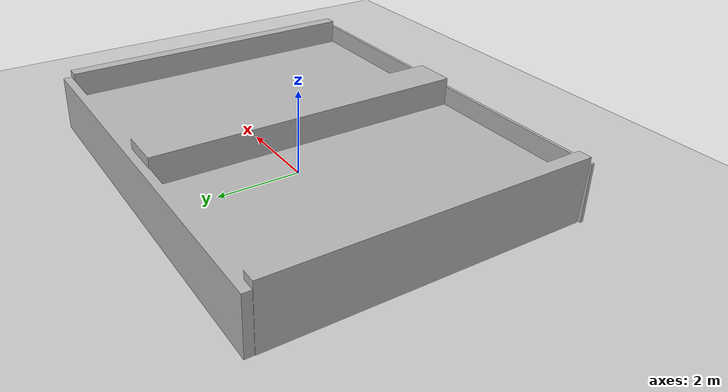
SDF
<sdf version="1.6">
 <world name="default">
  <model name="ground_plane">
   <static>1</static>
   <link name="link">
    <collision name="collision">
     <geometry><plane><normal>0 0 1</normal><size>100 100</size></plane></geometry>
     <surface><friction><ode><mu>100</mu><mu2>50</mu2></ode></friction></surface>
    </collision>
    <visual name="visual">
     <cast_shadows>0</cast_shadows>
     <geometry><plane><normal>0 0 1</normal><size>100 100</size></plane></geometry>
     <material>
      <script><uri>file://media/materials/scripts/gazebo.material</uri><name>Gazebo/Grey</name></script>
     </material>
    </visual>
   </link>
  </model>
  <light name="sun" type="directional">
   <pose>0 0 10 0 -0 0</pose>
   <diffuse>0.8 0.8 0.8 1</diffuse>
   <specular>0.2 0.2 0.2 1</specular>
   <attenuation>
    <range>1000</range>
    <constant>0.9</constant>
    <linear>0.01</linear>
    <quadratic>0.001</quadratic>
   </attenuation>
   <direction>-0.5 0.1 -0.9</direction>
  </light>
  <model name="nasa_arena">
   <static>1</static>
   <link name="body">
    <inertial>
     <mass>0.1</mass>
     <inertia><ixx>1</ixx><ixy>0</ixy><ixz>0</ixz><iyy>1</iyy><iyz>0</iyz><izz>1</izz></inertia>
    </inertial>
    <visual name="Arena_Visual">
     <geometry><mesh><uri>model://amee_gazebo/meshes/arena/nasa_minimal_aruco.dae</uri></mesh></geometry>
    </visual>
    <collision name="Arena_Surface">
     <geometry><mesh><uri>model://amee_gazebo/meshes/arena/nasa_minimal_aruco.dae</uri></mesh></geometry>
     <surface><contact><ode><max_vel>1</max_vel></ode></contact></surface>
    </collision>
   </link>
  </model>
  <gravity>0 0 -9.8</gravity>
  <magnetic_field>6e-06 2.3e-05 -4.2e-05</magnetic_field>
  <atmosphere type="adiabatic"/>
  <physics name="default_physics" default="0" type="ode">
   <max_step_size>0.001</max_step_size>
   <real_time_factor>1</real_time_factor>
   <real_time_update_rate>1000</real_time_update_rate>
  </physics>
  <scene><ambient>0.4 0.4 0.4 1</ambient><background>0.7 0.7 0.7 1</background><shadows>1</shadows></scene>
  <spherical_coordinates>
   <surface_model>EARTH_WGS84</surface_model>
   <latitude_deg>0</latitude_deg>
   <longitude_deg>0</longitude_deg>
   <elevation>0</elevation>
   <heading_deg>0</heading_deg>
  </spherical_coordinates>
  <light name="user_point_light_0" type="point">
   <pose>-2.36164 2.78559 1 0 -0 0</pose>
   <diffuse>0.5 0.5 0.5 1</diffuse>
   <specular>0.1 0.1 0.1 1</specular>
   <attenuation>
    <range>20</range>
    <constant>0.5</constant>
    <linear>0.01</linear>
    <quadratic>0.001</quadratic>
   </attenuation>
   <cast_shadows>0</cast_shadows>
   <direction>0 0 -1</direction>
  </light>
 </world>
</sdf>
